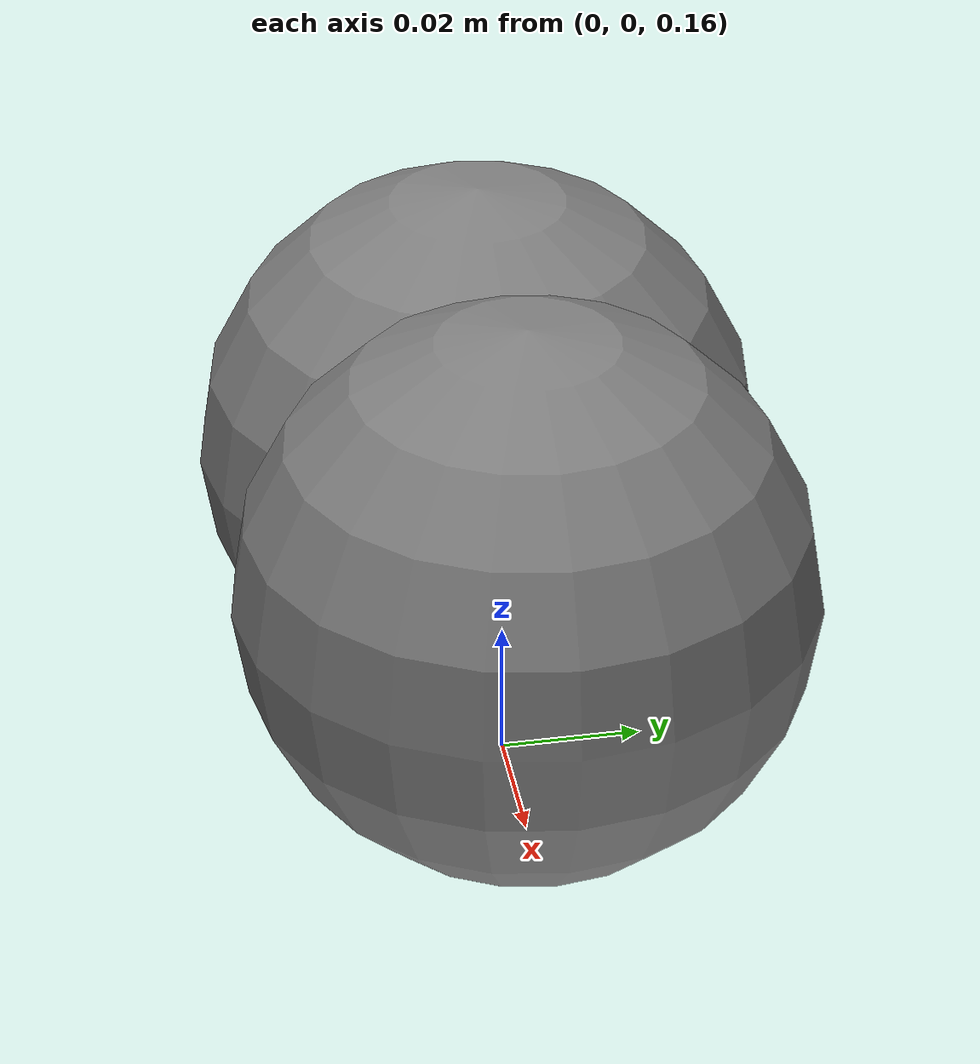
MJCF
<mujoco model="self_contact">
  <option timestep="0.002"/>
  <worldbody>
    <body name="base" pos="0 0 0.2">
      <geom type="sphere" size="0.01" density="1000" contype="0" conaffinity="0"/>
      <body name="left" pos="-0.02 0 0">
        <joint type="slide" axis="1 0 0"/>
        <geom type="sphere" size="0.04" density="1000"/>
      </body>
      <body name="right" pos="0.02 0 0">
        <joint type="slide" axis="1 0 0"/>
        <geom type="sphere" size="0.04" density="1000"/>
      </body>
    </body>
  </worldbody>
</mujoco>
